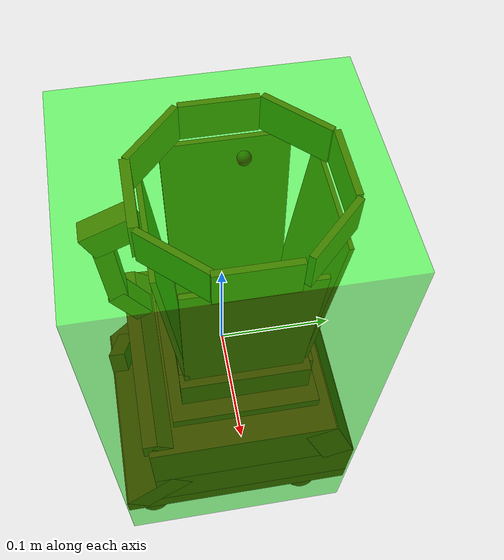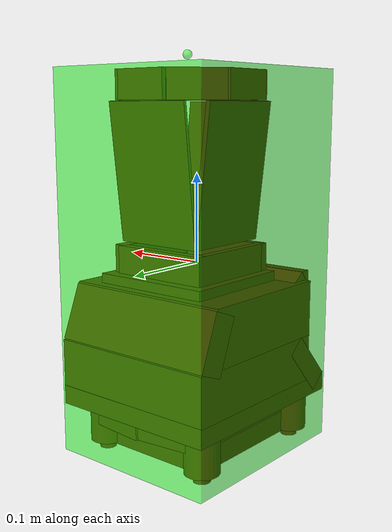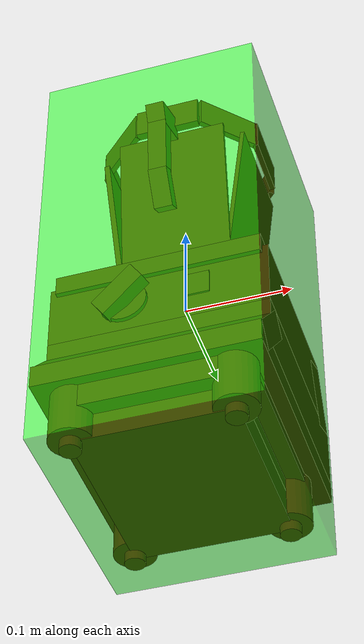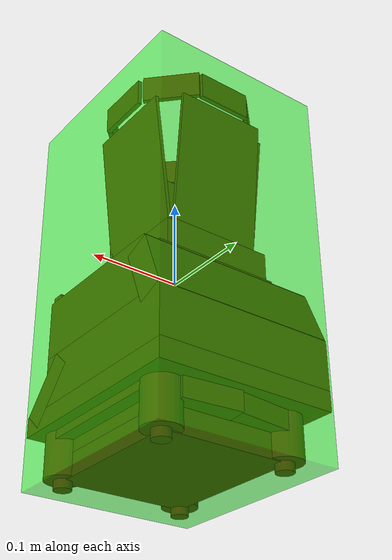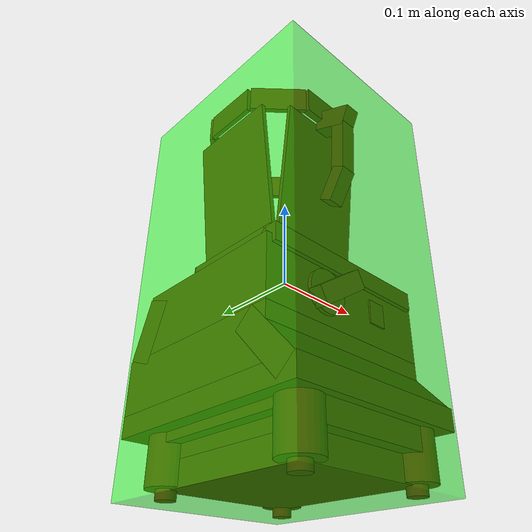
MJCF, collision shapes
<?xml version='1.0' encoding='UTF-8'?>
<mujoco model="model">
  <option timestep="0.002" gravity="0.0 0.0 -9.81"/>
  <compiler angle="radian"/>
  <asset>
    <mesh file="visuals/blade.obj" name="blade_vis"/>
    <mesh file="visuals/Body001.obj" name="Body001_vis"/>
    <mesh file="visuals/knob_speed.obj" name="knob_speed_vis"/>
    <mesh file="visuals/pitcher.obj" name="pitcher_vis"/>
    <mesh file="visuals/pitcher_main.obj" name="pitcher_main_vis"/>
    <mesh file="visuals/power_button.obj" name="power_button_vis"/>
    <texture file="visuals/T_BC001.png" name="Body001_material" type="2d"/>
    <material name="Body001_material" rgba="1 1 1 1.0" texture="Body001_material" shininess="0.2512328028678894" specular="0.3103448502657381"/>
    <texture file="visuals/T_BC001.png" name="knob_speed_material" type="2d"/>
    <material name="knob_speed_material" rgba="1 1 1 1.0" texture="knob_speed_material" shininess="0.2512328028678894" specular="0.3103448502657381"/>
    <texture file="visuals/T_BC001.png" name="pitcher_material" type="2d"/>
    <material name="pitcher_material" rgba="1 1 1 1.0" texture="pitcher_material" shininess="0.2512328028678894" specular="0.3103448502657381"/>
    <material name="pitcher_main_material" rgba="0.034405842423439026 0.034405842423439026 0.034405842423439026 0.800000011920929" shininess="0.2512328028678894" specular="0.3103448502657381"/>
    <texture file="visuals/T_BC001.png" name="blade_material" type="2d"/>
    <material name="blade_material" rgba="1 1 1 1.0" texture="blade_material" shininess="0.2512328028678894" specular="0.3103448502657381"/>
    <texture file="visuals/T_BC001.png" name="power_button_material" type="2d"/>
    <material name="power_button_material" rgba="1 1 1 1.0" texture="power_button_material" shininess="0.2512328028678894" specular="0.3103448502657381"/>
  </asset>
  <default>
    <default class="visual">
      <geom conaffinity="0" contype="0" group="1" type="mesh"/>
    </default>
    <default class="collision">
      <geom group="0" rgba="0.5 0 0 0.5" density="1000" solref="0.004 1" solimp="0.998 0.998 0.001"/>
    </default>
    <default class="spawn">
      <geom group="0" rgba="1 1 1 0.5" contype="0" conaffinity="0"/>
      <site group="0" rgba="1 1 1 0.5"/>
    </default>
    <default class="region">
      <geom group="1" conaffinity="0" contype="0" rgba="0 1 0 0.5" mass="0"/>
    </default>
  </default>
  <worldbody>
    <body>
      <body name="object">
        <geom mesh="Body001_vis" type="mesh" solimp="0.998 0.998 0.001" solref="0.001 1" friction="0.95 0.3 0.1" class="visual" material="Body001_material"/>
        <geom type="box" pos="0.00004191 -0.00474401 -0.18102116" size="0.07199854403734207 0.08503011614084244 0.023351456969976425" quat="1.0 0.0 0.0 0.0" class="collision"/>
        <geom type="box" pos="0.00000000 -0.00014645 -0.14688974" size="0.09943026304244995 0.1133682131767273 0.010778187774121761" quat="1.0 0.0 0.0 0.0" class="collision"/>
        <geom type="box" pos="-0.00000000 0.01614844 -0.10986075" size="0.09943031519651413 0.09688074886798859 0.027123788371682167" quat="1.0 0.0 0.0 0.0" class="collision"/>
        <geom type="box" pos="-0.00376587 0.01344736 -0.00428496" size="0.047960978001356125 0.046660613268613815 0.006251452956348658" quat="1.0 0.0 0.0 0.0" class="collision"/>
        <geom type="box" pos="0.00004191 -0.01270072 -0.15647866" size="0.07199906557798386 0.09150230139493942 0.02335158735513687" quat="1.0 0.0 0.0 0.0" class="collision"/>
        <geom type="box" pos="0.02975268 0.08612290 -0.16676707" size="0.03190840035676956 0.013986317440867424 0.011905279941856861" quat="0.9989776611328125 0.0 -0.0 -0.045206304639577866" class="collision"/>
        <geom type="box" pos="-0.03155254 0.08310511 -0.16647265" size="0.03190840035676956 0.013986317440867424 0.011905279941856861" quat="0.9983143210411072 0.0 0.0 0.0580388642847538" class="collision"/>
        <geom type="box" pos="0.00128349 -0.00629347 -0.16218883" size="0.08547735959291458 0.0850306898355484 0.004519341513514519" quat="1.0 0.0 0.0 0.0" class="collision"/>
        <geom type="box" pos="0.00000000 -0.07877731 -0.11829640" size="0.09943116456270218 0.035607967525720596 0.01294387225061655" quat="0.9136365652084351 0.40653201937675476 -9.026823501444178e-17 4.167705595728671e-24" class="collision"/>
        <geom type="cylinder" pos="-0.07031364 -0.08765264 -0.20320927" size="0.00947424117475748 0.00947424117475748" quat="1.0 0.0 0.0 0.0" class="collision"/>
        <geom type="cylinder" pos="-0.07031364 -0.08765264 -0.17930526" size="0.0194860827177763 0.023954443633556366" quat="1.0 0.0 0.0 0.0" class="collision"/>
        <geom type="cylinder" pos="0.07012229 -0.08788109 -0.20320927" size="0.00947424117475748 0.00947424117475748" quat="1.0 0.0 0.0 0.0" class="collision"/>
        <geom type="cylinder" pos="0.07012229 -0.08788109 -0.17930526" size="0.0194860827177763 0.023954443633556366" quat="1.0 0.0 0.0 0.0" class="collision"/>
        <geom type="cylinder" pos="0.07017411 0.07598721 -0.20320927" size="0.00947424117475748 0.00947424117475748" quat="1.0 0.0 0.0 0.0" class="collision"/>
        <geom type="cylinder" pos="0.07017411 0.07598721 -0.17930526" size="0.0194860827177763 0.023954443633556366" quat="1.0 0.0 0.0 0.0" class="collision"/>
        <geom type="cylinder" pos="-0.07015801 0.07610055 -0.20320927" size="0.00947424117475748 0.00947424117475748" quat="1.0 0.0 0.0 0.0" class="collision"/>
        <geom type="cylinder" pos="-0.07015801 0.07610055 -0.17930526" size="0.0194860827177763 0.023954443633556366" quat="1.0 0.0 0.0 0.0" class="collision"/>
        <geom type="box" pos="-0.00000000 0.00345156 -0.05220516" size="0.09943083673715591 0.08418437838554382 0.03178541734814644" quat="1.0 0.0 0.0 0.0" class="collision"/>
        <geom type="box" pos="-0.00000000 0.08656062 -0.05725193" size="0.09943114966154099 0.015107586979866028 0.031785573810338974" quat="0.9832200407981873 0.1824234575033188 -4.050617102016226e-17 4.576456240351654e-24" class="collision"/>
        <geom type="box" pos="0.00372709 0.01006931 -0.01915972" size="0.07046279311180115 0.06620841473340988 0.009505023248493671" quat="1.0 0.0 0.0 0.0" class="collision"/>
        <geom type="box" pos="0.00035559 -0.07876443 -0.01915972" size="0.09373795241117477 0.006440823432058096 0.009505023248493671" quat="1.0 0.0 0.0 0.0" class="collision"/>
        <geom type="box" pos="0.00035559 -0.06896617 -0.02061198" size="0.09373795241117477 0.006440823432058096 0.009505022317171097" quat="0.894934356212616 0.44619783759117126 0.0 0.0" class="collision"/>
        <body name="knob_speed">
          <joint axis="0.0 1.0 0.0" pos="-0.02985010 -0.08856570 -0.05383879" limited="true" name="knob_speed_joint" range="0.0 4.1887902047863905" type="hinge" damping="0.05" armature="0.001"/>
          <geom mesh="knob_speed_vis" type="mesh" solimp="0.998 0.998 0.001" solref="0.001 1" friction="0.95 0.3 0.1" class="visual" material="knob_speed_material"/>
          <geom type="cylinder" pos="-0.03046050 -0.08344376 -0.05373773" size="0.021604180335998535 0.001981839071959257" quat="0.7071067094802856 0.7071068286895752 0.0 0.0" class="collision"/>
          <geom class="collision" type="box" pos="-0.02922417 -0.09473307 -0.05415586" size="0.007757030893117189 0.009034786373376846 0.023546382784843445" quat="0.4059410095214844 -0.6311303973197937 -0.6149581074714661 0.24230735003948212" name="knob_speed_main"/>
        </body>
        <body name="pitcher">
          <geom mesh="pitcher_vis" type="mesh" solimp="0.998 0.998 0.001" solref="0.001 1" friction="0.95 0.3 0.1" class="visual" material="pitcher_material"/>
          <geom class="collision" type="box" pos="0.00134067 -0.08578708 0.12840700" size="0.008719570003449917 0.0076684425584971905 0.030896702781319618" quat="0.9994240999221802 0.033934105187654495 0.0 0.0" name="pitcher_handle_1"/>
          <geom class="collision" type="box" pos="0.00136547 -0.07583934 0.08483158" size="0.00874503143131733 0.007932057604193687 0.018651528283953667" quat="0.9616867899894714 0.274150550365448 0.0 0.0" name="pitcher_handle_2"/>
          <geom class="collision" type="box" pos="0.00133902 -0.07917307 0.17285265" size="0.008752253837883472 0.011492143385112286 0.020996490493416786" quat="0.8395240306854248 -0.5433225631713867 -0.0 0.0" name="pitcher_handle_0"/>
          <body name="pitcher_main">
            <geom class="region" type="cylinder" size="0.04105715826153755 0.06909993290901184" pos="-0.00009216 0.01288146 0.10950858" rgba="0 0 1 0.5" name="reg_int"/>
            <geom mesh="pitcher_main_vis" type="mesh" solimp="0.998 0.998 0.001" solref="0.001 1" friction="0.95 0.3 0.1" class="visual" material="pitcher_main_material"/>
            <geom type="box" pos="0.05275339 0.01160286 0.00831912" size="0.006559801287949085 0.057112209498882294 0.015429945662617683" quat="1.0 0.0 0.0 0.0" class="collision"/>
            <geom type="box" pos="-0.00582938 0.06694266 0.00831912" size="0.057111989706754684 0.005001084879040718 0.015429931692779064" quat="1.0 0.0 0.0 0.0" class="collision"/>
            <geom type="box" pos="-0.05833406 0.01328734 0.00831912" size="0.0046172006987035275 0.057111889123916626 0.015429917722940445" quat="1.0 0.0 0.0 0.0" class="collision"/>
            <geom type="box" pos="-0.00583968 -0.04036652 0.00831912" size="0.05711181461811066 0.004630060400813818 0.015429902821779251" quat="1.0 0.0 0.0 0.0" class="collision"/>
            <geom type="box" pos="-0.05982332 0.01383461 0.10319119" size="0.0025632414035499096 0.051372114568948746 0.07540363818407059" quat="0.9983683228492737 1.9271728888270445e-06 -0.05710252374410629 3.367393946973607e-05" class="collision"/>
            <geom type="box" pos="0.00347901 -0.04719132 0.10312437" size="0.0021318390499800444 0.051372114568948746 0.07534198462963104" quat="0.7059291005134583 0.04037894681096077 -0.04037623107433319 0.7059769034385681" class="collision"/>
            <geom type="box" pos="0.06041925 0.01049512 0.10273257" size="0.001973443664610386 0.051372114568948746 0.07576888799667358" quat="3.637487316154875e-05 -0.05710252374410629 -2.0803652205358958e-06 -0.9983683228492737" class="collision"/>
            <geom type="box" pos="-0.00148259 0.07325230 0.10314924" size="0.0018098397413268685 0.051372114568948746 0.07535210251808167" quat="0.7059786319732666 -0.04037610441446304 -0.04037903994321823 -0.7059273719787598" class="collision"/>
            <geom type="box" pos="-0.07420228 0.01028565 0.19438520" size="0.0025598087813705206 0.030356895178556442 0.015429902821779251" quat="1.0 0.0 0.0 0.0" class="collision"/>
            <geom type="box" pos="0.07635693 0.01028565 0.19438520" size="0.0025598090142011642 0.030356895178556442 0.015429902821779251" quat="1.0 0.0 0.0 0.0" class="collision"/>
            <geom type="box" pos="0.05449574 -0.04086027 0.19438520" size="0.002559809945523739 0.030356895178556442 0.015429902821779251" quat="0.9293042421340942 0.0 -0.0 -0.3693150579929352" class="collision"/>
            <geom type="box" pos="0.00205769 -0.06308075 0.19438520" size="0.030433163046836853 0.0037288046441972256 0.015429902821779251" quat="1.0 0.0 0.0 0.0" class="collision"/>
            <geom type="box" pos="-0.05094109 -0.04223305 0.19438520" size="0.002559809945523739 0.030356895178556442 0.015429902821779251" quat="0.4049685597419739 0.0 -0.0 -0.9143306016921997" class="collision"/>
            <geom type="box" pos="-0.05341088 0.06419597 0.19438520" size="0.002559809945523739 0.03035689704120159 0.015429902821779251" quat="0.9234796762466431 0.0 -0.0 -0.3836473524570465" class="collision"/>
            <geom type="box" pos="-0.00054002 0.08750427 0.19438520" size="0.03036731667816639 0.002686205320060253 0.015429902821779251" quat="1.0 0.0 0.0 0.0" class="collision"/>
            <geom type="box" pos="0.05328303 0.06648801 0.19438520" size="0.002559809945523739 0.030356895178556442 0.015429902821779251" quat="0.37978920340538025 0.0 -0.0 -0.9250730872154236" class="collision"/>
            <body name="blade">
              <geom mesh="blade_vis" type="mesh" solimp="0.998 0.998 0.001" solref="0.001 1" friction="0.95 0.3 0.1" class="visual" material="blade_material"/>
              <geom type="cylinder" pos="0.00000000 0.01007370 0.01741993" size="0.004584804177284241 0.013087698258459568" quat="1.0 0.0 0.0 0.0" class="collision"/>
              <geom type="cylinder" pos="0.00000000 0.01007370 0.03248165" size="0.009153613820672035 0.0019740283023566008" quat="1.0 0.0 0.0 0.0" class="collision"/>
              <geom type="cylinder" pos="0.00000000 0.01007370 0.03761567" size="0.002619080478325486 0.0014288165839388967" quat="1.0 0.0 0.0 0.0" class="collision"/>
              <geom type="cylinder" pos="0.00000000 0.01007370 0.03582821" size="0.0038133717607706785 0.00035864306846633554" quat="1.0 0.0 0.0 0.0" class="collision"/>
              <geom type="box" pos="-0.01745919 0.00850269 0.03539590" size="0.01940135285258293 0.004977840930223465 0.00013571526505984366" quat="0.9986625909805298 0.0 0.0 0.05170168727636337" class="collision"/>
              <geom type="box" pos="-0.00122930 0.02742440 0.03539590" size="0.01940135285258293 0.004977840930223465 0.00013571526505984366" quat="0.753109872341156 0.0 -0.0 -0.6578947305679321" class="collision"/>
              <geom type="box" pos="0.01720731 0.01134743 0.03539590" size="0.01940135471522808 0.004977840930223465 0.00013571526505984366" quat="0.06732738763093948 0.0 -0.0 -0.9977309107780457" class="collision"/>
              <geom type="box" pos="0.00163670 -0.00764109 0.03682646" size="0.019401350989937782 0.004977840464562178 0.00013571526505984366" quat="0.6578945517539978 0.0 0.0 0.7531100511550903" class="collision"/>
            </body>
          </body>
        </body>
        <body name="power_button">
          <joint axis="0.0 1.0 0.0" pos="0.03732334 -0.08295390 -0.05281088" limited="true" name="power_button_joint" range="0.0 0.003" type="slide" damping="1" frictionloss="1" armature=".01" stiffness="0.2" springref="-0.5"/>
          <geom mesh="power_button_vis" type="mesh" solimp="0.998 0.998 0.001" solref="0.001 1" friction="0.95 0.3 0.1" class="visual" material="power_button_material"/>
          <geom class="collision" type="box" pos="0.03758665 -0.08462512 -0.05222534" size="0.010003328323364258 0.0008242419571615756 0.01193332765251398" quat="1.0 0.0 0.0 0.0" name="power_button_main"/>
        </body>
        <geom class="region" name="reg_main" type="box" pos="0.0 -1.599999999990498e-07 -1.8000000000240046e-07" size="0.10043116 0.11451728 0.2131599"/>
      </body>
      <site rgba="0 1 0 0.5" size="0.005" pos="0.000857 0.014615 0.2263" name="anchor_site"/>
    </body>
  </worldbody>
  <actuator>
    <motor name="knob_speed_joint_actuator" joint="knob_speed_joint" gear="10"/>
    <motor name="power_button_joint_actuator" joint="power_button_joint" gear="0.5"/>
  </actuator>
</mujoco>
